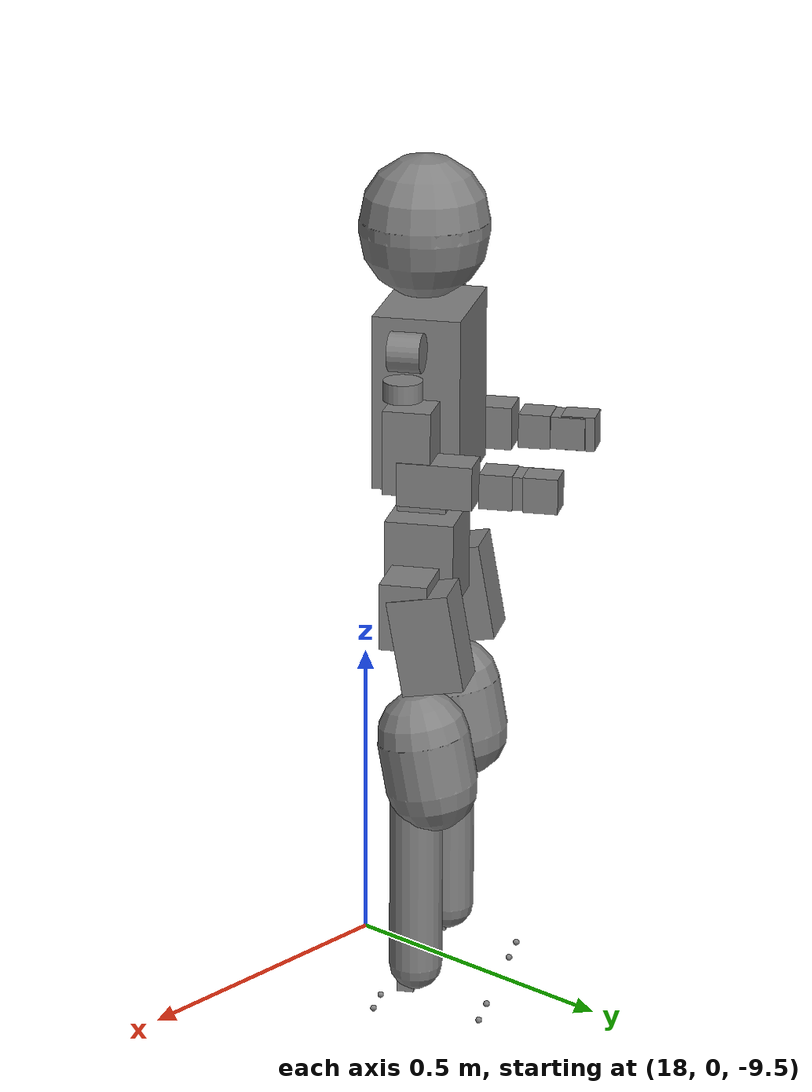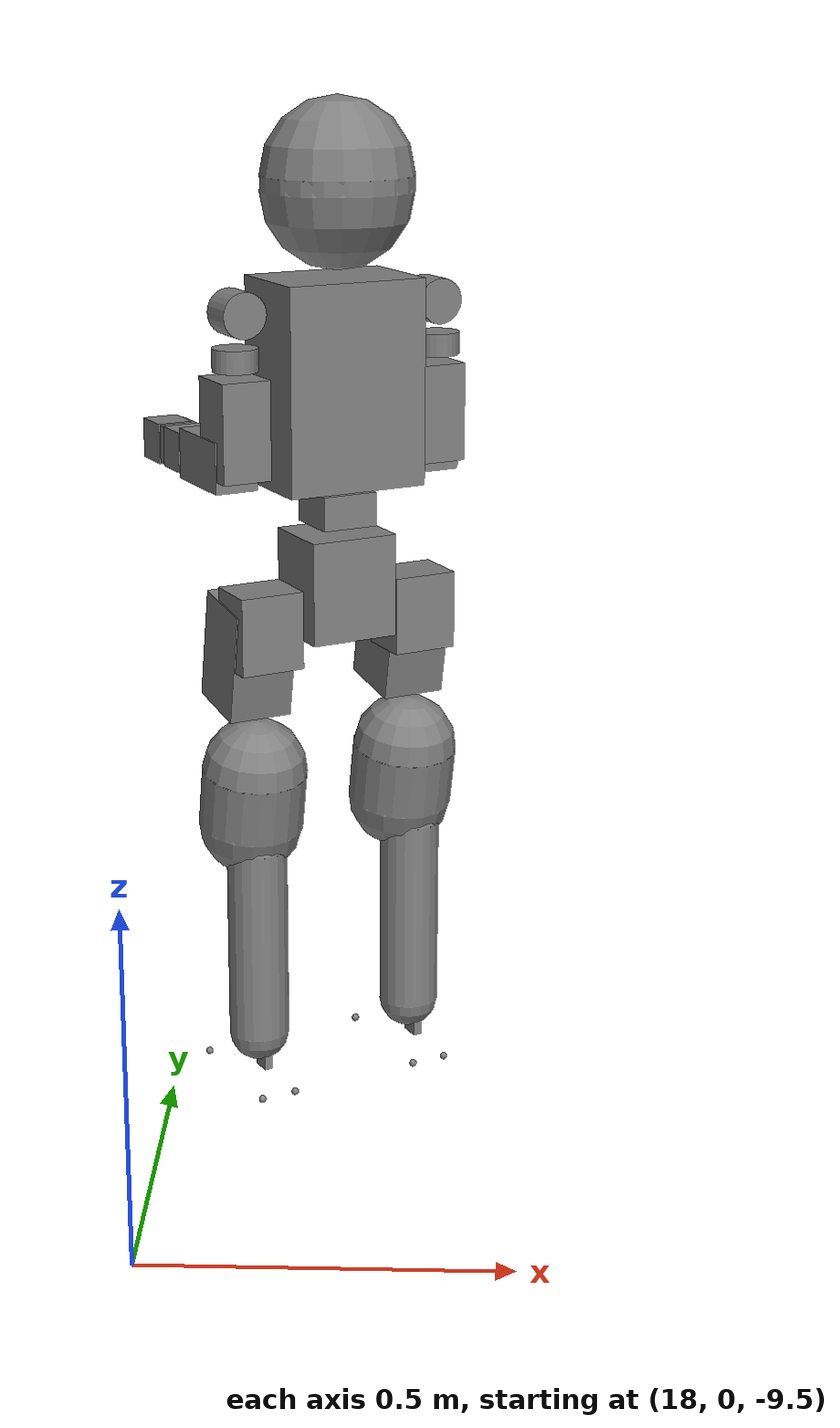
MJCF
<?xml version='1.0' encoding='utf-8'?>
<mujoco model="rek_pelvis_3266">
  <compiler coordinate="local" />
  <option timestep="0.019999992913832199" gravity="0 0 -9.8100004196166992" impratio="1" magnetic="0 0 0" wind="0 0 0" density="0" viscosity="0" o_margin="0" o_solref="0.019999999552965164 1" o_solimp="0.89999997615814209 0.94999998807907104 0.0010000000474974513 0.5 2" integrator="implicitfast" cone="elliptic" jacobian="auto" solver="Newton" iterations="100" tolerance="9.9999999392252903e-09" noslip_iterations="0" noslip_tolerance="9.9999999747524271e-07" ccd_iterations="50" ccd_tolerance="9.9999999747524271e-07">
    <flag constraint="enable" equality="enable" frictionloss="enable" limit="enable" contact="enable" spring="enable" damper="enable" gravity="enable" clampctrl="enable" warmstart="enable" filterparent="enable" actuation="enable" refsafe="enable" override="disable" energy="disable" fwdinv="disable" multiccd="disable" />
  </option>
  <size memory="-1" />
  <custom />
  <worldbody>
    <body name="pelvis_3266" pos="18.254999160766602 0.36000001430511475 -8.5990002155303955" quat="0.50541162160533537 0 0 0.86287837656663136" gravcomp="0">
      <body name="left_hip_pitch_link_3457" pos="-1.3877787807814457e-17 0.064451999962329781 -0.10270000249147415" quat="1 0 0 0" gravcomp="0">
        <body name="left_hip_roll_link_3425" pos="9.7144514654701197e-17 0.052000001072883786 -0.030464999377727509" quat="0.99617868596660997 0 -0.087338568947737019 -1.1102230246251565e-16" gravcomp="0">
          <body name="left_hip_yaw_link_2943" pos="0.025001000612975076 1.5543122344752192e-15 -0.12411999702453594" quat="1 0 0 -1.2576745200831851e-17" gravcomp="0">
            <body name="left_knee_link_3106" pos="-0.078272998332977878 0.0021488999482234955 -0.17734000086784374" quat="0.99617868596660997 6.9388939039072284e-18 0.087338568947737005 -6.1259230688899764e-19" gravcomp="0">
              <body name="left_ankle_pitch_link_3033" pos="1.4934884925987824e-16 -9.4445000285932839e-05 -0.30000999569892883" quat="1 0 0 9.6296497219361793e-35" gravcomp="0">
                <body name="left_ankle_roll_link_3045" pos="-2.9735684393186275e-19 -4.565577275908913e-19 -0.01755799911916256" quat="1 0 0 9.6296497219361793e-35" gravcomp="0">
                  <inertial pos="0.026505000889301987 1.2490009027033011e-15 -0.016425000503659248" quat="-0.00048109179920679656 0.72848180059747192 -0.00061896679591005453 0.68506470616216375" mass="0.60799998044967651" diaginertia="0.00167218002025038 0.0016160999657586217 0.00021762099640909582" />
                  <joint name="joint__left_ankle_roll_joint_2905" type="hinge" pos="0 0 0" axis="1 1.9259299443872359e-34 0" armature="0.0072194500826299191" springref="0" springdamper="0 0" damping="0.05000000074505806" stiffness="0" solreflimit="0.019999999552965164 1" solimplimit="0.89999997615814209 0.94999998807907104 0.0010000000474974513 0.5 2" solreffriction="0.019999999552965164 1" solimpfriction="0.89999997615814209 0.94999998807907104 0.0010000000474974513 0.5 2" frictionloss="0.20000000298023224" limited="true" margin="0" range="-15.000034332275391 15.000034332275391" ref="0" />
                  <geom name="mjgeom_authored_3078" density="0" type="sphere" size="0.004999999888241291" pos="-0.050000000745058351 0.025000000372528544 -0.029999999329447746" quat="1 0 0 9.6296497219361793e-35" priority="0" contype="1" conaffinity="1" group="0" condim="3" solmix="1" solref="0.019999999552965164 1" solimp="0.89999997615814209 0.94999998807907104 0.0010000000474974513" margin="0" gap="0" friction="1 0.004999999888241291 9.9999997473787516e-05" fluidshape="none" fluidcoef="5 0.25 1.5 1 1" />
                  <geom name="mjgeom_authored_3434" density="0" type="sphere" size="0.004999999888241291" pos="-0.050000000745058004 -0.02500000037252894 -0.029999999329447746" quat="1 0 0 9.6296497219361793e-35" priority="0" contype="1" conaffinity="1" group="0" condim="3" solmix="1" solref="0.019999999552965164 1" solimp="0.89999997615814209 0.94999998807907104 0.0010000000474974513" margin="0" gap="0" friction="1 0.004999999888241291 9.9999997473787516e-05" fluidshape="none" fluidcoef="5 0.25 1.5 1 1" />
                  <geom name="mjgeom_authored_3201" density="0" type="sphere" size="0.004999999888241291" pos="0.11999999731779078 0.029999999329447302 -0.02999999932944775" quat="1 0 0 9.6296497219361793e-35" priority="0" contype="1" conaffinity="1" group="0" condim="3" solmix="1" solref="0.019999999552965164 1" solimp="0.89999997615814209 0.94999998807907104 0.0010000000474974513" margin="0" gap="0" friction="1 0.004999999888241291 9.9999997473787516e-05" fluidshape="none" fluidcoef="5 0.25 1.5 1 1" />
                  <geom name="mjgeom_authored_3130" density="0" type="sphere" size="0.004999999888241291" pos="0.11999999731779179 -0.029999999329446275 -0.02999999932944775" quat="1 0 0 9.6296497219361793e-35" priority="0" contype="1" conaffinity="1" group="0" condim="3" solmix="1" solref="0.019999999552965164 1" solimp="0.89999997615814209 0.94999998807907104 0.0010000000474974513" margin="0" gap="0" friction="1 0.004999999888241291 9.9999997473787516e-05" fluidshape="none" fluidcoef="5 0.25 1.5 1 1" />
                </body>
                <inertial pos="-0.0072690001688901209 -6.1582683397176652e-16 0.011137000285089016" quat="0.60305298197600943 0.3692250004128147 0.3692250004128147 0.60305298197600932" mass="0.074000000953674316" diaginertia="1.8900000213761814e-05 1.4080499568080995e-05 6.919499810464913e-06" />
                <joint name="joint__left_ankle_pitch_joint_2982" type="hinge" pos="0 0 0" axis="-2.2204460492503126e-16 1 6.5368229940789346e-33" armature="0.0072194500826299191" springref="0" springdamper="0 0" damping="0.05000000074505806" stiffness="0" solreflimit="0.019999999552965164 1" solimplimit="0.89999997615814209 0.94999998807907104 0.0010000000474974513 0.5 2" solreffriction="0.019999999552965164 1" solimpfriction="0.89999997615814209 0.94999998807907104 0.0010000000474974513 0.5 2" frictionloss="0.20000000298023224" limited="true" margin="0" range="-50.000308990478516 30.000068664550781" ref="0" />
                <geom name="mjgeom_3039" density="0" type="box" size="0.013479510380420836 0.016846910875756297 0.0059266640164423725" pos="-0.0035227723419665718 0.00014300439215739029 -0.0058391094207763672" quat="2.9802318610457207e-08 2.980231861541685e-08 -0.70710678118654691 -0.70710678118654691" priority="0" contype="1" conaffinity="2" group="0" condim="3" solmix="1" solref="0.019999999552965164 1" solimp="0.89999997615814209 0.94999998807907104 0.0010000000474974513" margin="0" gap="0" friction="1 0.004999999888241291 9.9999997473787516e-05" fluidshape="none" fluidcoef="5 0.25 1.5 1 1" />
              </body>
              <inertial pos="0.0054569998756053761 0.0039639999158684758 -0.12073999643325806" quat="0.92341787234595951 -0.032769897917134708 0.015824598274911447 0.38206694297203919" mass="1.9320000410079956" diaginertia="0.011380399577319622 0.011277800425887108 0.0014645799528807402" />
              <joint name="joint__left_knee_joint_3137" type="hinge" pos="0 0 0" axis="-2.2204460492503126e-16 1 6.5368229940789346e-33" armature="0.025101924315094948" springref="0" springdamper="0 0" damping="0.05000000074505806" stiffness="0" solreflimit="0.019999999552965164 1" solimplimit="0.89999997615814209 0.94999998807907104 0.0010000000474974513 0.5 2" solreffriction="0.019999999552965164 1" solimpfriction="0.89999997615814209 0.94999998807907104 0.0010000000474974513 0.5 2" frictionloss="0.20000000298023224" limited="true" margin="0" range="-5.000030517578125 165.00039672851562" ref="0" />
              <geom name="mjgeom_3224" density="0" type="capsule" size="0.041472329758107669 0.13606720604002479" pos="0.011999648064374422 -8.3323335275985524e-05 -0.13741210103034973" quat="4.2146847789581443e-08 1.5407439555097887e-33 7.7037197775489434e-34 -0.99999999999999922" priority="0" contype="1" conaffinity="2" group="0" condim="3" solmix="1" solref="0.019999999552965164 1" solimp="0.89999997615814209 0.94999998807907104 0.0010000000474974513" margin="0" gap="0" friction="1 0.004999999888241291 9.9999997473787516e-05" fluidshape="none" fluidcoef="5 0.25 1.5 1 1" />
            </body>
            <inertial pos="-0.057709001004695545 -0.010981000028549924 -0.15078000724315654" quat="0.60059793208355583 0.15831996789768774 0.22348195109437591 0.75118088985069531" mass="1.7020000219345093" diaginertia="0.0077616600319743156 0.0071757500991225243 0.0016013899585232139" />
            <joint name="joint__left_hip_yaw_joint_3267" type="hinge" pos="0 0 0" axis="-2.2204460492503131e-16 1.3247655120144351e-16 1" armature="0.010177520103752613" springref="0" springdamper="0 0" damping="0.05000000074505806" stiffness="0" solreflimit="0.019999999552965164 1" solimplimit="0.89999997615814209 0.94999998807907104 0.0010000000474974513 0.5 2" solreffriction="0.019999999552965164 1" solimpfriction="0.89999997615814209 0.94999998807907104 0.0010000000474974513 0.5 2" frictionloss="0.20000000298023224" limited="true" margin="0" range="-157.99884033203125 157.99884033203125" ref="0" />
            <geom name="mjgeom_3399" density="0" type="capsule" size="0.071829627268016338 0.041044317185878761" pos="-0.037462260574102665 -0.0010485649108891298 -0.11335682868957533" quat="4.1985788967052733e-08 2.9951634505920302e-09 -6.9388939039072268e-18 -0.99999999999999911" priority="0" contype="1" conaffinity="2" group="0" condim="3" solmix="1" solref="0.019999999552965164 1" solimp="0.89999997615814209 0.94999998807907104 0.0010000000474974513" margin="0" gap="0" friction="1 0.004999999888241291 9.9999997473787516e-05" fluidshape="none" fluidcoef="5 0.25 1.5 1 1" />
          </body>
          <inertial pos="0.029812000691890293 -0.0010450000409044022 -0.087934002280235485" quat="0.97780777106336325 -1.9711895438305482e-05 0.20557596017013183 -0.040379289984682841" mass="1.5199999809265137" diaginertia="0.0025498599279671907 0.0024116900749504566 0.0014875499764457345" />
          <joint name="joint__left_hip_roll_joint_3248" type="hinge" pos="0 0 0" axis="1 -2.5153490401663703e-17 0" armature="0.025101924315094948" springref="0" springdamper="0 0" damping="0.05000000074505806" stiffness="0" solreflimit="0.019999999552965164 1" solimplimit="0.89999997615814209 0.94999998807907104 0.0010000000474974513 0.5 2" solreffriction="0.019999999552965164 1" solimpfriction="0.89999997615814209 0.94999998807907104 0.0010000000474974513 0.5 2" frictionloss="0.20000000298023224" limited="true" margin="0" range="-30.000068664550781 170.00230407714844" ref="0" />
          <geom name="mjgeom_3141" density="0" type="box" size="0.047961223754100502 0.076655694283545031 0.044093289761804037" pos="0.026883890852332802 -0.0001681223511682331 -0.038719426840544219" quat="2.7570534225432319e-08 3.1806334954698201e-08 -0.70710678118654702 -0.70710678118654691" priority="0" contype="1" conaffinity="2" group="0" condim="3" solmix="1" solref="0.019999999552965164 1" solimp="0.89999997615814209 0.94999998807907104 0.0010000000474974513" margin="0" gap="0" friction="1 0.004999999888241291 9.9999997473787516e-05" fluidshape="none" fluidcoef="5 0.25 1.5 1 1" />
        </body>
        <inertial pos="0.0027409999165692034 0.04779100045561932 -0.026060000061988831" quat="0.95486247817542302 0.29396413007377181 0.030255613910682867 0.030122015695304819" mass="1.3500000238418579" diaginertia="0.0018151700496673584 0.0015342199476435781 0.0011621200246736407" />
        <joint name="joint__left_hip_pitch_joint_3047" type="hinge" pos="0 0 0" axis="-2.2204460492503126e-16 1 0" armature="0.010177520103752613" springref="0" springdamper="0 0" damping="0.05000000074505806" stiffness="0" solreflimit="0.019999999552965164 1" solimplimit="0.89999997615814209 0.94999998807907104 0.0010000000474974513 0.5 2" solreffriction="0.019999999552965164 1" solimpfriction="0.89999997615814209 0.94999998807907104 0.0010000000474974513 0.5 2" frictionloss="0.20000000298023224" limited="true" margin="0" range="-144.99842834472656 165.00039672851562" ref="0" />
        <geom name="mjgeom_3337" density="0" type="box" size="0.037135550519451506 0.05274748546071352 0.044440440251491964" pos="-0.001050249789842167 0.04937807470559951 -0.021436683833599091" quat="3.0908621106995326e-08 3.0908621106995326e-08 -0.70710678118654691 -0.70710678118654691" priority="0" contype="1" conaffinity="2" group="0" condim="3" solmix="1" solref="0.019999999552965164 1" solimp="0.89999997615814209 0.94999998807907104 0.0010000000474974513" margin="0" gap="0" friction="1 0.004999999888241291 9.9999997473787516e-05" fluidshape="none" fluidcoef="5 0.25 1.5 1 1" />
      </body>
      <body name="right_hip_pitch_link_3469" pos="1.3877787807814457e-17 -0.064451999962329781 -0.10270000249147415" quat="1 0 0 0" gravcomp="0">
        <body name="right_hip_roll_link_3345" pos="-9.7144514654701197e-17 -0.052000001072883786 -0.030464999377727509" quat="0.99617868596660997 0 -0.087338568947737019 -1.1102230246251565e-16" gravcomp="0">
          <body name="right_hip_yaw_link_3191" pos="0.025001000612975076 1.5543122344752192e-15 -0.12411999702453594" quat="1 0 0 -1.2576745200831851e-17" gravcomp="0">
            <body name="right_knee_link_3429" pos="-0.078272998332977572 -0.0021488999482247723 -0.17734000086784379" quat="0.99617868596660997 6.9388939039072284e-18 0.087338568947737005 -6.1259230688899764e-19" gravcomp="0">
              <body name="right_ankle_pitch_link_3173" pos="-1.5951324462692984e-16 9.444500028591724e-05 -0.30000999569892883" quat="1 0 0 9.6296497219361793e-35" gravcomp="0">
                <body name="right_ankle_roll_link_3090" pos="-2.9735684393186275e-19 -4.565577275908913e-19 -0.01755799911916256" quat="1 0 0 9.6296497219361793e-35" gravcomp="0">
                  <inertial pos="0.026505000889301987 1.2490009027033011e-15 -0.016425000503659248" quat="0.00048109179920674972 0.72848180059747181 0.00061896679591011828 0.68506470616216364" mass="0.60799998044967651" diaginertia="0.00167218002025038 0.0016160999657586217 0.00021762099640909582" />
                  <joint name="joint__right_ankle_roll_joint_3474" type="hinge" pos="0 0 0" axis="1 1.9259299443872359e-34 0" armature="0.0072194500826299191" springref="0" springdamper="0 0" damping="0.05000000074505806" stiffness="0" solreflimit="0.019999999552965164 1" solimplimit="0.89999997615814209 0.94999998807907104 0.0010000000474974513 0.5 2" solreffriction="0.019999999552965164 1" solimpfriction="0.89999997615814209 0.94999998807907104 0.0010000000474974513 0.5 2" frictionloss="0.20000000298023224" limited="true" margin="0" range="-15.000034332275391 15.000034332275391" ref="0" />
                  <geom name="mjgeom_authored_3138" density="0" type="sphere" size="0.004999999888241291" pos="-0.050000000745058351 0.025000000372528544 -0.029999999329447746" quat="1 0 0 9.6296497219361793e-35" priority="0" contype="1" conaffinity="1" group="0" condim="3" solmix="1" solref="0.019999999552965164 1" solimp="0.89999997615814209 0.94999998807907104 0.0010000000474974513" margin="0" gap="0" friction="1 0.004999999888241291 9.9999997473787516e-05" fluidshape="none" fluidcoef="5 0.25 1.5 1 1" />
                  <geom name="mjgeom_authored_3263" density="0" type="sphere" size="0.004999999888241291" pos="-0.050000000745058004 -0.02500000037252894 -0.029999999329447746" quat="1 0 0 9.6296497219361793e-35" priority="0" contype="1" conaffinity="1" group="0" condim="3" solmix="1" solref="0.019999999552965164 1" solimp="0.89999997615814209 0.94999998807907104 0.0010000000474974513" margin="0" gap="0" friction="1 0.004999999888241291 9.9999997473787516e-05" fluidshape="none" fluidcoef="5 0.25 1.5 1 1" />
                  <geom name="mjgeom_authored_3316" density="0" type="sphere" size="0.004999999888241291" pos="0.11999999731779072 0.029999999329447358 -0.02999999932944775" quat="1 0 0 9.6296497219361793e-35" priority="0" contype="1" conaffinity="1" group="0" condim="3" solmix="1" solref="0.019999999552965164 1" solimp="0.89999997615814209 0.94999998807907104 0.0010000000474974513" margin="0" gap="0" friction="1 0.004999999888241291 9.9999997473787516e-05" fluidshape="none" fluidcoef="5 0.25 1.5 1 1" />
                  <geom name="mjgeom_authored_3217" density="0" type="sphere" size="0.004999999888241291" pos="0.11999999731779183 -0.029999999329446303 -0.02999999932944775" quat="1 0 0 9.6296497219361793e-35" priority="0" contype="1" conaffinity="1" group="0" condim="3" solmix="1" solref="0.019999999552965164 1" solimp="0.89999997615814209 0.94999998807907104 0.0010000000474974513" margin="0" gap="0" friction="1 0.004999999888241291 9.9999997473787516e-05" fluidshape="none" fluidcoef="5 0.25 1.5 1 1" />
                </body>
                <inertial pos="-0.0072690001688901209 -6.1582683397176652e-16 0.011137000285089016" quat="0.60305298197600943 0.3692250004128147 0.3692250004128147 0.60305298197600932" mass="0.074000000953674316" diaginertia="1.8900000213761814e-05 1.4080499568080995e-05 6.919499810464913e-06" />
                <joint name="joint__right_ankle_pitch_joint_3312" type="hinge" pos="0 0 0" axis="-2.2204460492503126e-16 1 6.5368229940789346e-33" armature="0.0072194500826299191" springref="0" springdamper="0 0" damping="0.05000000074505806" stiffness="0" solreflimit="0.019999999552965164 1" solimplimit="0.89999997615814209 0.94999998807907104 0.0010000000474974513 0.5 2" solreffriction="0.019999999552965164 1" solimpfriction="0.89999997615814209 0.94999998807907104 0.0010000000474974513 0.5 2" frictionloss="0.20000000298023224" limited="true" margin="0" range="-50.000308990478516 30.000068664550781" ref="0" />
                <geom name="mjgeom_3271" density="0" type="box" size="0.013479510380420836 0.016846909420564774 0.005926662197452969" pos="-0.0035228133201594962 -0.00014299694157599973 -0.0058391094207763672" quat="2.9802318610457207e-08 2.980231861541685e-08 -0.70710678118654691 -0.70710678118654691" priority="0" contype="1" conaffinity="2" group="0" condim="3" solmix="1" solref="0.019999999552965164 1" solimp="0.89999997615814209 0.94999998807907104 0.0010000000474974513" margin="0" gap="0" friction="1 0.004999999888241291 9.9999997473787516e-05" fluidshape="none" fluidcoef="5 0.25 1.5 1 1" />
              </body>
              <inertial pos="0.0054569998756047039 -0.003963999915868782 -0.12073999643325806" quat="0.92343889150208058 0.034527595519145943 0.011633299100056282 -0.38201194374145381" mass="1.9320000410079956" diaginertia="0.011374000459909439 0.011284300126135349 0.0014645199989899993" />
              <joint name="joint__right_knee_joint_3412" type="hinge" pos="0 0 0" axis="-2.2204460492503126e-16 1 6.5368229940789346e-33" armature="0.025101924315094948" springref="0" springdamper="0 0" damping="0.05000000074505806" stiffness="0" solreflimit="0.019999999552965164 1" solimplimit="0.89999997615814209 0.94999998807907104 0.0010000000474974513 0.5 2" solreffriction="0.019999999552965164 1" solimpfriction="0.89999997615814209 0.94999998807907104 0.0010000000474974513 0.5 2" frictionloss="0.20000000298023224" limited="true" margin="0" range="-5.000030517578125 165.00039672851562" ref="0" />
              <geom name="mjgeom_3023" density="0" type="capsule" size="0.041472326847724623 0.1360671943984926" pos="0.011999662965535526 8.3368038757580809e-05 -0.13741210103034973" quat="4.2146847789581443e-08 1.5407439555097887e-33 7.7037197775489434e-34 -0.99999999999999922" priority="0" contype="1" conaffinity="2" group="0" condim="3" solmix="1" solref="0.019999999552965164 1" solimp="0.89999997615814209 0.94999998807907104 0.0010000000474974513" margin="0" gap="0" friction="1 0.004999999888241291 9.9999997473787516e-05" fluidshape="none" fluidcoef="5 0.25 1.5 1 1" />
            </body>
            <inertial pos="-0.057709001004695989 0.010981000028550493 -0.15078000724315646" quat="0.7511808898506952 0.22348195109437591 0.15831996789768774 0.60059793208355594" mass="1.7020000219345093" diaginertia="0.0077616600319743156 0.0071757500991225243 0.0016013899585232139" />
            <joint name="joint__right_hip_yaw_joint_3071" type="hinge" pos="0 0 0" axis="-2.2204460492503131e-16 1.3247655120144351e-16 1" armature="0.010177520103752613" springref="0" springdamper="0 0" damping="0.05000000074505806" stiffness="0" solreflimit="0.019999999552965164 1" solimplimit="0.89999997615814209 0.94999998807907104 0.0010000000474974513 0.5 2" solreffriction="0.019999999552965164 1" solimpfriction="0.89999997615814209 0.94999998807907104 0.0010000000474974513 0.5 2" frictionloss="0.20000000298023224" limited="true" margin="0" range="-157.99884033203125 157.99884033203125" ref="0" />
            <geom name="mjgeom_3406" density="0" type="capsule" size="0.071829644730314612 0.041044323006644852" pos="-0.037462309002875629 0.0010465979576122011 -0.11335794627666473" quat="4.1985788967052733e-08 2.9951634505920302e-09 -6.9388939039072268e-18 -0.99999999999999911" priority="0" contype="1" conaffinity="2" group="0" condim="3" solmix="1" solref="0.019999999552965164 1" solimp="0.89999997615814209 0.94999998807907104 0.0010000000474974513" margin="0" gap="0" friction="1 0.004999999888241291 9.9999997473787516e-05" fluidshape="none" fluidcoef="5 0.25 1.5 1 1" />
          </body>
          <inertial pos="0.029812000691889974 0.0010450000409024038 -0.087934002280235443" quat="0.97780777106336314 1.9711895438333234e-05 0.20557596017013174 0.04037928998468273" mass="1.5199999809265137" diaginertia="0.0025498599279671907 0.0024116900749504566 0.0014875499764457345" />
          <joint name="joint__right_hip_roll_joint_3059" type="hinge" pos="0 0 0" axis="1 -2.5153490401663703e-17 0" armature="0.025101924315094948" springref="0" springdamper="0 0" damping="0.05000000074505806" stiffness="0" solreflimit="0.019999999552965164 1" solimplimit="0.89999997615814209 0.94999998807907104 0.0010000000474974513 0.5 2" solreffriction="0.019999999552965164 1" solimpfriction="0.89999997615814209 0.94999998807907104 0.0010000000474974513 0.5 2" frictionloss="0.20000000298023224" limited="true" margin="0" range="-170.00230407714844 30.000068664550781" ref="0" />
          <geom name="mjgeom_3062" density="0" type="box" size="0.04796121793333441 0.076655682642012848 0.044093283941037946" pos="0.026883879676461598 0.00016814470291211248 -0.038719426840544163" quat="2.7570534225432319e-08 3.1806334954698201e-08 -0.70710678118654702 -0.70710678118654691" priority="0" contype="1" conaffinity="2" group="0" condim="3" solmix="1" solref="0.019999999552965164 1" solimp="0.89999997615814209 0.94999998807907104 0.0010000000474974513" margin="0" gap="0" friction="1 0.004999999888241291 9.9999997473787516e-05" fluidshape="none" fluidcoef="5 0.25 1.5 1 1" />
        </body>
        <inertial pos="0.0027409999165676213 -0.047791000455619327 -0.026060000061988831" quat="0.95486247817542302 -0.29396413007377176 0.030255613910682905 -0.03012201569530476" mass="1.3500000238418579" diaginertia="0.0018151700496673584 0.0015342199476435781 0.0011621200246736407" />
        <joint name="joint__right_hip_pitch_joint_3298" type="hinge" pos="0 0 0" axis="-2.2204460492503126e-16 1 0" armature="0.010177520103752613" springref="0" springdamper="0 0" damping="0.05000000074505806" stiffness="0" solreflimit="0.019999999552965164 1" solimplimit="0.89999997615814209 0.94999998807907104 0.0010000000474974513 0.5 2" solreffriction="0.019999999552965164 1" solimpfriction="0.89999997615814209 0.94999998807907104 0.0010000000474974513 0.5 2" frictionloss="0.20000000298023224" limited="true" margin="0" range="-144.99842834472656 165.00039672851562" ref="0" />
        <geom name="mjgeom_3024" density="0" type="box" size="0.037135550519451506 0.05274748546071352 0.044440440251491964" pos="-0.0010502411751079771 -0.049378067255020773 -0.021436624228954315" quat="3.0908621106995326e-08 3.0908621106995326e-08 -0.70710678118654691 -0.70710678118654691" priority="0" contype="1" conaffinity="2" group="0" condim="3" solmix="1" solref="0.019999999552965164 1" solimp="0.89999997615814209 0.94999998807907104 0.0010000000474974513" margin="0" gap="0" friction="1 0.004999999888241291 9.9999997473787516e-05" fluidshape="none" fluidcoef="5 0.25 1.5 1 1" />
      </body>
      <body name="waist_yaw_link_3359" pos="0 0 0" quat="1 0 0 0" gravcomp="0">
        <body name="waist_roll_link_2894" pos="-0.0039634997956447936 1.2281842209915794e-15 0.035000000149011612" quat="1 0 0 0" gravcomp="0">
          <body name="torso_link_3347" pos="0 0 0.018999999389052391" quat="1 0 0 0" gravcomp="0">
            <body name="left_shoulder_pitch_link_3161" pos="0.00395630020648155 0.10022000223398055 0.23778000473976135" quat="0.9902641388950898 0.1392010247334452 1.3872202005688061e-05 -9.8686814262172184e-05" gravcomp="0">
              <body name="left_shoulder_roll_link_3360" pos="-4.5796699765787707e-16 0.037999998778103894 -0.0138309998437765" quat="0.99026821913005192 -0.13917203088622282 0 6.3533823791176933e-18" gravcomp="0">
                <body name="left_shoulder_yaw_link_3168" pos="5.8460181140418399e-16 0.0062400000169883594 -0.10320000350475353" quat="1 0 0 -3.2819588146978036e-18" gravcomp="0">
                  <body name="left_elbow_link_3284" pos="0.015783000737429023 6.1756155744774333e-16 -0.0805179998278613" quat="1 0 0 -3.2819588146978036e-18" gravcomp="0">
                    <body name="left_wrist_roll_link_3032" pos="0.10000000149011658 0.0018879099516206088 -0.0099999997764823843" quat="1 0 0 -3.2819588146978036e-18" gravcomp="0">
                      <body name="left_wrist_pitch_link_2914" pos="0.037999998778104768 -1.3877787807814457e-17 1.3392692038921919e-16" quat="1 0 0 -3.2819588146978036e-18" gravcomp="0">
                        <body name="left_wrist_yaw_link_3467" pos="0.046000000089407536 9.7144514654701197e-16 -3.156917205405195e-16" quat="1 0 0 -3.2819588146978036e-18" gravcomp="0">
                          <inertial pos="0.070824399590491569 0.00019174499902747943 0.0016174199990922002" quat="0.51057085673791158 0.52629485922096653 0.46807784345838327 0.49318784846227443" mass="0.25457599759101868" diaginertia="0.00064611301058903337 0.00055999297183007002 0.00014756599557586014" />
                          <joint name="joint__left_wrist_yaw_joint_3398" type="hinge" pos="0 0 0" axis="-4.4408920985006252e-16 -6.0488425288159066e-17 1" armature="0.0042500002309679985" springref="0" springdamper="0 0" damping="0.05000000074505806" stiffness="0" solreflimit="0.019999999552965164 1" solimplimit="0.89999997615814209 0.94999998807907104 0.0010000000474974513 0.5 2" solreffriction="0.019999999552965164 1" solimpfriction="0.89999997615814209 0.94999998807907104 0.0010000000474974513 0.5 2" frictionloss="0.10000000149011612" limited="true" margin="0" range="-0.0099999997764825821 0.0099999997764825821" ref="0" />
                          <geom name="mjgeom_3001" density="0" type="box" size="0.02654675918165595 0.027197948656976226 0.024242402287200097" pos="0.011494085192680591 0.0030774502083663752 -0.0002476256340736681" quat="3.0904894321660931e-08 3.0899774882994809e-08 -0.70710678118654691 -0.70710678118654691" priority="0" contype="1" conaffinity="2" group="0" condim="3" solmix="1" solref="0.019999999552965164 1" solimp="0.89999997615814209 0.94999998807907104 0.0010000000474974513" margin="0" gap="0" friction="1 0.004999999888241291 9.9999997473787516e-05" fluidshape="none" fluidcoef="5 0.25 1.5 1 1" />
                        </body>
                        <inertial pos="0.022999899461865689 -0.0011168499477202942 -0.0011165799805891311" quat="0.24999781281163241 0.66136261727293699 0.2930358512109591 0.64360746730313778" mass="0.48405000567436218" diaginertia="0.00043035298585891724 0.00042987300548702478 0.00016464799409732223" />
                        <joint name="joint__left_wrist_pitch_joint_3007" type="hinge" pos="0 0 0" axis="2.2204460492503131e-16 1 4.7915419271355436e-21" armature="0.0042500002309679985" springref="0" springdamper="0 0" damping="0.05000000074505806" stiffness="0" solreflimit="0.019999999552965164 1" solimplimit="0.89999997615814209 0.94999998807907104 0.0010000000474974513 0.5 2" solreffriction="0.019999999552965164 1" solimpfriction="0.89999997615814209 0.94999998807907104 0.0010000000474974513 0.5 2" frictionloss="0.10000000149011612" limited="true" margin="0" range="-0.0099999997764825821 0.0099999997764825821" ref="0" />
                        <geom name="mjgeom_3334" density="0" type="box" size="0.046348539763130261 0.025670017930679027 0.025670265313237909" pos="0.023001398891209703 -1.2152595460987459e-06 -8.3260238253851098e-07" quat="3.0904894321660931e-08 3.0899774882994809e-08 -0.70710678118654691 -0.70710678118654691" priority="0" contype="1" conaffinity="2" group="0" condim="3" solmix="1" solref="0.019999999552965164 1" solimp="0.89999997615814209 0.94999998807907104 0.0010000000474974513" margin="0" gap="0" friction="1 0.004999999888241291 9.9999997473787516e-05" fluidshape="none" fluidcoef="5 0.25 1.5 1 1" />
                      </body>
                      <inertial pos="0.017139399424195696 0.00053759099682867267 4.8864001193679435e-07" quat="0.57533836956330275 0.41166726178029356 -0.57490635509352861 0.41109428232417616" mass="0.085445001721382141" diaginertia="5.4821099183754995e-05 4.9664598918752745e-05 3.5779801692115143e-05" />
                      <joint name="joint__left_wrist_roll_joint_3260" type="hinge" pos="0 0 0" axis="1 -6.5639176293956072e-18 0" armature="0.0036097250413149595" springref="0" springdamper="0 0" damping="0.05000000074505806" stiffness="0" solreflimit="0.019999999552965164 1" solimplimit="0.89999997615814209 0.94999998807907104 0.0010000000474974513 0.5 2" solreffriction="0.019999999552965164 1" solimpfriction="0.89999997615814209 0.94999998807907104 0.0010000000474974513 0.5 2" frictionloss="0.10000000149011612" limited="true" margin="0" range="-0.0099999997764825821 0.0099999997764825821" ref="0" />
                      <geom name="mjgeom_3002" density="0" type="box" size="0.025194766931235797 0.026991910999640826 0.027219200273975733" pos="0.027983762323856215 -0.00023716397117844179 -9.6689909696807475e-06" quat="3.0904894321660931e-08 3.0899774882994809e-08 -0.70710678118654691 -0.70710678118654691" priority="0" contype="1" conaffinity="2" group="0" condim="3" solmix="1" solref="0.019999999552965164 1" solimp="0.89999997615814209 0.94999998807907104 0.0010000000474974513" margin="0" gap="0" friction="1 0.004999999888241291 9.9999997473787516e-05" fluidshape="none" fluidcoef="5 0.25 1.5 1 1" />
                    </body>
                    <inertial pos="0.064956001937389818 0.0044539999216803017 -0.010061999782919138" quat="0.54176520789614191 0.63613229389227743 0.38882118096304707 0.38812917104374023" mass="0.60000002384185791" diaginertia="0.0004430350090842694 0.00042161199962720275 0.00025935299345292151" />
                    <joint name="joint__left_elbow_joint_3144" type="hinge" pos="0 0 0" axis="2.2204460492503131e-16 1 4.7915419271355436e-21" armature="0.0036097250413149595" springref="0" springdamper="0 0" damping="0.05000000074505806" stiffness="0" solreflimit="0.019999999552965164 1" solimplimit="0.89999997615814209 0.94999998807907104 0.0010000000474974513 0.5 2" solreffriction="0.019999999552965164 1" solimpfriction="0.89999997615814209 0.94999998807907104 0.0010000000474974513 0.5 2" frictionloss="0.20000000298023224" limited="true" margin="0" range="-60.000137329101562 120.00027465820312" ref="0" />
                    <geom name="mjgeom_2925" density="0" type="box" size="0.05791535368189217 0.033814596827141948 0.029707717476412657" pos="0.034565247595310447 0.0017413077875976235 -0.0078394636511802309" quat="3.0904894321660931e-08 3.0899774882994809e-08 -0.70710678118654691 -0.70710678118654691" priority="0" contype="1" conaffinity="2" group="0" condim="3" solmix="1" solref="0.019999999552965164 1" solimp="0.89999997615814209 0.94999998807907104 0.0010000000474974513" margin="0" gap="0" friction="1 0.004999999888241291 9.9999997473787516e-05" fluidshape="none" fluidcoef="5 0.25 1.5 1 1" />
                  </body>
                  <inertial pos="0.010773000307380974 -0.0029490001033994455 -0.072008997201920208" quat="0.71687871348059373 -0.096482835314005699 -0.06799415691056454 0.68713373318023108" mass="0.73400002717971802" diaginertia="0.0010618700180202723 0.0010321700247004628 0.0004006609960924834" />
                  <joint name="joint__left_shoulder_yaw_joint_2923" type="hinge" pos="0 0 0" axis="-4.4408920985006252e-16 -6.0488425288159066e-17 1" armature="0.0036097250413149595" springref="0" springdamper="0 0" damping="0.05000000074505806" stiffness="0" solreflimit="0.019999999552965164 1" solimplimit="0.89999997615814209 0.94999998807907104 0.0010000000474974513 0.5 2" solreffriction="0.019999999552965164 1" solimpfriction="0.89999997615814209 0.94999998807907104 0.0010000000474974513 0.5 2" frictionloss="0.20000000298023224" limited="true" margin="0" range="-150.00035095214844 150.00035095214844" ref="0" />
                  <geom name="mjgeom_2988" density="0" type="box" size="0.036520726280286915 0.065385946072638049 0.033536946284584708" pos="0.0077661490067839865 -0.0041541093960404517 -0.041064620018004976" quat="3.0904894321660931e-08 3.0899774882994809e-08 -0.70710678118654691 -0.70710678118654691" priority="0" contype="1" conaffinity="2" group="0" condim="3" solmix="1" solref="0.019999999552965164 1" solimp="0.89999997615814209 0.94999998807907104 0.0010000000474974513" margin="0" gap="0" friction="1 0.004999999888241291 9.9999997473787516e-05" fluidshape="none" fluidcoef="5 0.25 1.5 1 1" />
                </body>
                <inertial pos="-0.00022699999681280968 0.0072699999436722645 -0.063243001699447396" quat="0.70125602097011697 -0.019622301241046993 -0.0071031701083145108 0.71260402982412119" mass="0.64300000667572021" diaginertia="0.00069131102645769715 0.00061801099218428135 0.00038897700142115355" />
                <joint name="joint__left_shoulder_roll_joint_3184" type="hinge" pos="0 0 0" axis="1 -6.5639176293956072e-18 0" armature="0.0036097250413149595" springref="0" springdamper="0 0" damping="0.05000000074505806" stiffness="0" solreflimit="0.019999999552965164 1" solimplimit="0.89999997615814209 0.94999998807907104 0.0010000000474974513 0.5 2" solreffriction="0.019999999552965164 1" solimpfriction="0.89999997615814209 0.94999998807907104 0.0010000000474974513 0.5 2" frictionloss="0.20000000298023224" limited="true" margin="0" range="-90.997154235839844 129.00144958496094" ref="0" />
                <geom name="mjgeom_authored_2987" density="0" type="cylinder" size="0.029999999329447743 0.014999999664723871" pos="-0.0040000001899895728 0.0060000000521544371 -0.052999999374152" quat="1 0 0 -3.2819588146978036e-18" priority="0" contype="1" conaffinity="1" group="0" condim="3" solmix="1" solref="0.019999999552965164 1" solimp="0.89999997615814209 0.94999998807907104 0.0010000000474974513" margin="0" gap="0" friction="1 0.004999999888241291 9.9999997473787516e-05" fluidshape="none" fluidcoef="5 0.25 1.5 1 1" />
              </body>
              <inertial pos="-2.5673907444456745e-16 0.035891998559235957 -0.011628000065684804" quat="0.6541518924397296 0.013045797575914023 -0.32626696220841073 0.6822499381857241" mass="0.71799999475479126" diaginertia="0.00046586399548687041 0.00043284200364723802 0.00040639401413500309" />
              <joint name="joint__left_shoulder_pitch_joint_3340" type="hinge" pos="0 0 0" axis="-2.2204460492503126e-16 1 -1.9626155733547183e-17" armature="0.0036097250413149595" springref="0" springdamper="0 0" damping="0.05000000074505806" stiffness="0" solreflimit="0.019999999552965164 1" solimplimit="0.89999997615814209 0.94999998807907104 0.0010000000474974513 0.5 2" solreffriction="0.019999999552965164 1" solimpfriction="0.89999997615814209 0.94999998807907104 0.0010000000474974513 0.5 2" frictionloss="0.20000000298023224" limited="true" margin="0" range="-176.99812316894531 153.00263977050781" ref="0" />
              <geom name="mjgeom_authored_2910" density="0" type="cylinder" size="0.029999999329447736 0.025000000372529023" pos="7.9797279894933126e-16 0.03999999910593155 -0.0099999997764835744" quat="0.70710678118654757 -2.7755575615628914e-17 0.70710678118654757 -6.9388939039072284e-17" priority="0" contype="1" conaffinity="1" group="0" condim="3" solmix="1" solref="0.019999999552965164 1" solimp="0.89999997615814209 0.94999998807907104 0.0010000000474974513" margin="0" gap="0" friction="1 0.004999999888241291 9.9999997473787516e-05" fluidshape="none" fluidcoef="5 0.25 1.5 1 1" />
            </body>
            <body name="right_shoulder_pitch_link_3391" pos="0.0039563002064828823 -0.10021000355482021 0.23778000473976135" quat="0.99026413889508969 -0.13920102473344517 1.3872202005701936e-05 9.8686814262061135e-05" gravcomp="0">
              <body name="right_shoulder_roll_link_3426" pos="-4.0245584642661925e-16 -0.037999998778105282 -0.013830999843776896" quat="0.99026821913005181 0.13917203088622282 0 6.3668925546263981e-17" gravcomp="0">
                <body name="right_shoulder_yaw_link_3107" pos="2.1857515797307769e-16 -0.0062400000169868805 -0.10320000350475353" quat="1 0 -3.3881317890171999e-21 -1.7084806385460423e-17" gravcomp="0">
                  <body name="right_elbow_link_3322" pos="0.015783000737428672 -2.0816681711721685e-17 -0.0805179998278613" quat="1 0 -3.3881317890171999e-21 -1.7084806385460423e-17" gravcomp="0">
                    <body name="right_wrist_roll_link_3331" pos="0.10000000149011669 -0.0018879099516189157 -0.0099999997764823843" quat="1 0 -3.3881317890171999e-21 -1.7084806385460423e-17" gravcomp="0">
                      <body name="right_wrist_pitch_link_3282" pos="0.03799999877810422 -1.1032841307212493e-15 1.3383131154529786e-16" quat="1 0 -3.3881317890171999e-21 -1.7084806385460423e-17" gravcomp="0">
                        <body name="right_wrist_yaw_link_3293" pos="0.046000000089407668 1.214306433183765e-15 -3.1555619526895881e-16" quat="1 0 -3.3881317890171999e-21 -1.7084806385460423e-17" gravcomp="0">
                          <inertial pos="0.070824399590492124 -0.00019174499902901987 0.0016174199990922" quat="0.49318784846227448 0.46807784345838332 0.52629485922096642 0.51057085673791147" mass="0.25457599759101868" diaginertia="0.00064611301058903337 0.00055999297183007002 0.00014756599557586014" />
                          <joint name="joint__right_wrist_yaw_joint_3226" type="hinge" pos="0 0 0" axis="2.2204460492503131e-16 7.9696518988563695e-17 1" armature="0.0042500002309679985" springref="0" springdamper="0 0" damping="0.05000000074505806" stiffness="0" solreflimit="0.019999999552965164 1" solimplimit="0.89999997615814209 0.94999998807907104 0.0010000000474974513 0.5 2" solreffriction="0.019999999552965164 1" solimpfriction="0.89999997615814209 0.94999998807907104 0.0010000000474974513 0.5 2" frictionloss="0.10000000149011612" limited="true" margin="0" range="-0.0099999997764825821 0.0099999997764825821" ref="0" />
                          <geom name="mjgeom_2927" density="0" type="box" size="0.026546759181655947 0.027197948656976226 0.024242396466434005" pos="0.011504098773001998 -0.0030774651095282421 -0.00024767033755791464" quat="3.0914948527974693e-08 3.0909807745011731e-08 -0.70710678118654691 -0.70710678118654691" priority="0" contype="1" conaffinity="2" group="0" condim="3" solmix="1" solref="0.019999999552965164 1" solimp="0.89999997615814209 0.94999998807907104 0.0010000000474974513" margin="0" gap="0" friction="1 0.004999999888241291 9.9999997473787516e-05" fluidshape="none" fluidcoef="5 0.25 1.5 1 1" />
                        </body>
                        <inertial pos="0.022999899461865588 0.0011168499477210089 -0.0011165799805891309" quat="0.64360746730313789 0.29303585121095915 0.66136261727293688 0.24999781281163239" mass="0.48405000567436218" diaginertia="0.00043035298585891724 0.00042987300548702478 0.00016464799409732223" />
                        <joint name="joint__right_wrist_pitch_joint_3437" type="hinge" pos="0 0 0" axis="-2.2204460492503126e-16 1 1.1978854817838857e-21" armature="0.0042500002309679985" springref="0" springdamper="0 0" damping="0.05000000074505806" stiffness="0" solreflimit="0.019999999552965164 1" solimplimit="0.89999997615814209 0.94999998807907104 0.0010000000474974513 0.5 2" solreffriction="0.019999999552965164 1" solimpfriction="0.89999997615814209 0.94999998807907104 0.0010000000474974513 0.5 2" frictionloss="0.10000000149011612" limited="true" margin="0" range="-0.0099999997764825821 0.0099999997764825821" ref="0" />
                        <geom name="mjgeom_2926" density="0" type="box" size="0.046348571777343757 0.025670015020295981 0.025670265313237909" pos="0.023011352866888077 1.1221272870967636e-06 -8.3260238217188569e-07" quat="3.0914948527974693e-08 3.0909807745011731e-08 -0.70710678118654691 -0.70710678118654691" priority="0" contype="1" conaffinity="2" group="0" condim="3" solmix="1" solref="0.019999999552965164 1" solimp="0.89999997615814209 0.94999998807907104 0.0010000000474974513" margin="0" gap="0" friction="1 0.004999999888241291 9.9999997473787516e-05" fluidshape="none" fluidcoef="5 0.25 1.5 1 1" />
                      </body>
                      <inertial pos="0.017139399424195741 -0.00053759099682714612 4.8864001193688033e-07" quat="0.41166726178029339 0.57533836956330286 -0.41109428232417611 0.5749063550935285" mass="0.085445001721382141" diaginertia="5.4821099183754995e-05 4.9664598918752745e-05 3.5779801692115143e-05" />
                      <joint name="joint__right_wrist_roll_joint_3378" type="hinge" pos="0 0 0" axis="1 -3.4169612770920847e-17 6.7762635780343997e-21" armature="0.0036097250413149595" springref="0" springdamper="0 0" damping="0.05000000074505806" stiffness="0" solreflimit="0.019999999552965164 1" solimplimit="0.89999997615814209 0.94999998807907104 0.0010000000474974513 0.5 2" solreffriction="0.019999999552965164 1" solimpfriction="0.89999997615814209 0.94999998807907104 0.0010000000474974513 0.5 2" frictionloss="0.10000000149011612" limited="true" margin="0" range="-0.0099999997764825821 0.0099999997764825821" ref="0" />
                      <geom name="mjgeom_3105" density="0" type="box" size="0.025194874615408484 0.026991873164661232 0.027219197363592688" pos="0.027993597090243922 0.00023737258743426054 -9.6093863244562346e-06" quat="3.0914948527974693e-08 3.0909807745011731e-08 -0.70710678118654691 -0.70710678118654691" priority="0" contype="1" conaffinity="2" group="0" condim="3" solmix="1" solref="0.019999999552965164 1" solimp="0.89999997615814209 0.94999998807907104 0.0010000000474974513" margin="0" gap="0" friction="1 0.004999999888241291 9.9999997473787516e-05" fluidshape="none" fluidcoef="5 0.25 1.5 1 1" />
                    </body>
                    <inertial pos="0.064956001937389762 -0.004453999921678789 -0.010061999782919138" quat="0.38812917104374017 0.38882118096304707 0.63613229389227743 0.54176520789614191" mass="0.60000002384185791" diaginertia="0.0004430350090842694 0.00042161199962720275 0.00025935299345292151" />
                    <joint name="joint__right_elbow_joint_3407" type="hinge" pos="0 0 0" axis="-2.2204460492503126e-16 1 1.1978854817838857e-21" armature="0.0036097250413149595" springref="0" springdamper="0 0" damping="0.05000000074505806" stiffness="0" solreflimit="0.019999999552965164 1" solimplimit="0.89999997615814209 0.94999998807907104 0.0010000000474974513 0.5 2" solreffriction="0.019999999552965164 1" solimpfriction="0.89999997615814209 0.94999998807907104 0.0010000000474974513 0.5 2" frictionloss="0.20000000298023224" limited="true" margin="0" range="-60.000137329101562 120.00027465820312" ref="0" />
                    <geom name="mjgeom_2915" density="0" type="box" size="0.05791529547423125 0.033814329071901746 0.02970770874526352" pos="0.034575205296278562 -0.0017412928864350349 -0.0078391805291174645" quat="3.0914948527974693e-08 3.0909807745011731e-08 -0.70710678118654691 -0.70710678118654691" priority="0" contype="1" conaffinity="2" group="0" condim="3" solmix="1" solref="0.019999999552965164 1" solimp="0.89999997615814209 0.94999998807907104 0.0010000000474974513" margin="0" gap="0" friction="1 0.004999999888241291 9.9999997473787516e-05" fluidshape="none" fluidcoef="5 0.25 1.5 1 1" />
                  </body>
                  <inertial pos="0.010773000307381337 0.0029490001033994854 -0.072008997201920222" quat="0.68713373318023119 -0.067994156910564568 -0.096482835314005727 0.71687871348059362" mass="0.73400002717971802" diaginertia="0.0010618700180202723 0.0010321700247004628 0.0004006609960924834" />
                  <joint name="joint__right_shoulder_yaw_joint_3176" type="hinge" pos="0 0 0" axis="2.2204460492503131e-16 7.9696518988563695e-17 1" armature="0.0036097250413149595" springref="0" springdamper="0 0" damping="0.05000000074505806" stiffness="0" solreflimit="0.019999999552965164 1" solimplimit="0.89999997615814209 0.94999998807907104 0.0010000000474974513 0.5 2" solreffriction="0.019999999552965164 1" solimpfriction="0.89999997615814209 0.94999998807907104 0.0010000000474974513 0.5 2" frictionloss="0.20000000298023224" limited="true" margin="0" range="-150.00035095214844 150.00035095214844" ref="0" />
                  <geom name="mjgeom_3281" density="0" type="box" size="0.036521491711027927 0.065385876223444953 0.033536946284584708" pos="0.007766543421893455 0.0041540162637814914 -0.041074573993683076" quat="3.0914948527974693e-08 3.0909807745011731e-08 -0.70710678118654691 -0.70710678118654691" priority="0" contype="1" conaffinity="2" group="0" condim="3" solmix="1" solref="0.019999999552965164 1" solimp="0.89999997615814209 0.94999998807907104 0.0010000000474974513" margin="0" gap="0" friction="1 0.004999999888241291 9.9999997473787516e-05" fluidshape="none" fluidcoef="5 0.25 1.5 1 1" />
                </body>
                <inertial pos="-0.00022699999681273682 -0.007269999943674805 -0.063243001699447396" quat="0.71260402982412119 -0.0071031701083145134 -0.019622301241046997 0.70125602097011697" mass="0.64300000667572021" diaginertia="0.00069131102645769715 0.00061801099218428135 0.00038897700142115355" />
                <joint name="joint__right_shoulder_roll_joint_3044" type="hinge" pos="0 0 0" axis="1 -3.4169612770920847e-17 6.7762635780343997e-21" armature="0.0036097250413149595" springref="0" springdamper="0 0" damping="0.05000000074505806" stiffness="0" solreflimit="0.019999999552965164 1" solimplimit="0.89999997615814209 0.94999998807907104 0.0010000000474974513 0.5 2" solreffriction="0.019999999552965164 1" solimpfriction="0.89999997615814209 0.94999998807907104 0.0010000000474974513 0.5 2" frictionloss="0.20000000298023224" limited="true" margin="0" range="-129.00144958496094 90.997154235839844" ref="0" />
                <geom name="mjgeom_authored_3172" density="0" type="cylinder" size="0.029999999329447743 0.014999999664723871" pos="-0.0040000001899898035 -0.0060000000521541006 -0.052999999374152" quat="1 0 -3.3881317890171999e-21 -1.7084806385460423e-17" priority="0" contype="1" conaffinity="1" group="0" condim="3" solmix="1" solref="0.019999999552965164 1" solimp="0.89999997615814209 0.94999998807907104 0.0010000000474974513" margin="0" gap="0" friction="1 0.004999999888241291 9.9999997473787516e-05" fluidshape="none" fluidcoef="5 0.25 1.5 1 1" />
              </body>
              <inertial pos="3.1918911957973251e-16 -0.035891998559235763 -0.011628000065684747" quat="0.68224993818572399 -0.32626696220841084 0.013045797575914005 0.6541518924397296" mass="0.71799999475479126" diaginertia="0.00046586399548687041 0.00043284200364723802 0.00040639401413500309" />
              <joint name="joint__right_shoulder_pitch_joint_3242" type="hinge" pos="0 0 0" axis="-2.2204460492503126e-16 1 0" armature="0.0036097250413149595" springref="0" springdamper="0 0" damping="0.05000000074505806" stiffness="0" solreflimit="0.019999999552965164 1" solimplimit="0.89999997615814209 0.94999998807907104 0.0010000000474974513 0.5 2" solreffriction="0.019999999552965164 1" solimpfriction="0.89999997615814209 0.94999998807907104 0.0010000000474974513 0.5 2" frictionloss="0.20000000298023224" limited="true" margin="0" range="-176.99812316894531 153.00263977050781" ref="0" />
              <geom name="mjgeom_authored_2920" density="0" type="cylinder" size="0.029999999329447736 0.025000000372529023" pos="1.2490009027033011e-16 -0.039999999105929926 -0.009999999776483106" quat="0.70710678118654757 -1.3877787807814454e-17 0.70710678118654757 2.7755575615628907e-17" priority="0" contype="1" conaffinity="1" group="0" condim="3" solmix="1" solref="0.019999999552965164 1" solimp="0.89999997615814209 0.94999998807907104 0.0010000000474974513" margin="0" gap="0" friction="1 0.004999999888241291 9.9999997473787516e-05" fluidshape="none" fluidcoef="5 0.25 1.5 1 1" />
            </body>
            <inertial pos="0.003316580085083131 0.00026153298676817593 0.17985600233078003" quat="0.99983097090536899 0.00037620398083599779 0.017989498596125395 -0.0037770397472053352" mass="9.5979995727539062" diaginertia="0.12407000362873077 0.11195100098848343 0.032538201659917831" />
            <joint name="joint__waist_pitch_joint_3233" type="hinge" pos="0 0 0" axis="-2.2204460492503126e-16 1 0" armature="0.0072194500826299191" springref="0" springdamper="0 0" damping="0.05000000074505806" stiffness="0" solreflimit="0.019999999552965164 1" solimplimit="0.89999997615814209 0.94999998807907104 0.0010000000474974513 0.5 2" solreffriction="0.019999999552965164 1" solimpfriction="0.89999997615814209 0.94999998807907104 0.0010000000474974513 0.5 2" frictionloss="0.20000000298023224" limited="true" margin="0" range="-29.793804168701172 29.793804168701172" ref="0" />
            <geom name="mjgeom_3285" density="0" type="box" size="0.067667051916942014 0.1356588210910559 0.096907373517751694" pos="0.00849667005240895 4.6759843825948735e-05 0.14155766367912292" quat="3.0908621106995326e-08 3.0908621106995326e-08 -0.70710678118654691 -0.70710678118654691" priority="0" contype="1" conaffinity="2" group="0" condim="3" solmix="1" solref="0.019999999552965164 1" solimp="0.89999997615814209 0.94999998807907104 0.0010000000474974513" margin="0" gap="0" friction="1 0.004999999888241291 9.9999997473787516e-05" fluidshape="none" fluidcoef="5 0.25 1.5 1 1" />
            <geom name="mjgeom_3064" density="0" type="capsule" size="0.10000000149011615 0.0099999997764825873" pos="0 0 0.39599999785423279" quat="-2.7450113293518605e-08 0 0.99999999999974576 7.1269823820312076e-07" priority="0" contype="1" conaffinity="2" group="0" condim="3" solmix="1" solref="0.019999999552965164 1" solimp="0.89999997615814209 0.94999998807907104 0.0010000000474974513" margin="0" gap="0" friction="1 0.004999999888241291 9.9999997473787516e-05" fluidshape="none" fluidcoef="5 0.25 1.5 1 1" />
          </body>
          <inertial pos="1.0690233420707074e-16 -0.00023600000713466969 0.010111000388860703" quat="0.99979001690948488 0.020492000588810209 0 0" mass="0.046999998390674591" diaginertia="7.5150001066504046e-06 6.4020600802905392e-06 3.9839401324570645e-06" />
          <joint name="joint__waist_roll_joint_3341" type="hinge" pos="0 0 0" axis="1 0 0" armature="0.0072194500826299191" springref="0" springdamper="0 0" damping="0.05000000074505806" stiffness="0" solreflimit="0.019999999552965164 1" solimplimit="0.89999997615814209 0.94999998807907104 0.0010000000474974513 0.5 2" solreffriction="0.019999999552965164 1" solimpfriction="0.89999997615814209 0.94999998807907104 0.0010000000474974513 0.5 2" frictionloss="0.20000000298023224" limited="true" margin="0" range="-29.793804168701172 29.793804168701172" ref="0" />
          <geom name="mjgeom_3382" density="0" type="box" size="0.015301753592211755 0.010764356557046998 0.0090016255853697658" pos="-1.024454918424952e-08 -6.7484512704258637e-07 -3.3527612686157227e-08" quat="3.0908621106995326e-08 3.0908621106995326e-08 -0.70710678118654691 -0.70710678118654691" priority="0" contype="1" conaffinity="2" group="0" condim="3" solmix="1" solref="0.019999999552965164 1" solimp="0.89999997615814209 0.94999998807907104 0.0010000000474974513" margin="0" gap="0" friction="1 0.004999999888241291 9.9999997473787516e-05" fluidshape="none" fluidcoef="5 0.25 1.5 1 1" />
        </body>
        <inertial pos="0.0039639999158681966 2.5500435096859064e-16 0.018768999725580215" quat="-0.017829101693530969 0.62846404880967777 0.028247101487221704 0.77712107405739517" mass="0.24400000274181366" diaginertia="0.00015856100071687251 0.00012422900181263685 9.6766896604094654e-05" />
        <joint name="joint__waist_yaw_joint_3441" type="hinge" pos="0 0 0" axis="-2.2204460492503126e-16 0 1" armature="0.010177520103752613" springref="0" springdamper="0 0" damping="0.05000000074505806" stiffness="0" solreflimit="0.019999999552965164 1" solimplimit="0.89999997615814209 0.94999998807907104 0.0010000000474974513 0.5 2" solreffriction="0.019999999552965164 1" solimpfriction="0.89999997615814209 0.94999998807907104 0.0010000000474974513 0.5 2" frictionloss="0.20000000298023224" limited="true" margin="0" range="-150.00035095214844 150.00035095214844" ref="0" />
        <geom name="mjgeom_3214" density="0" type="box" size="0.038190805935300894 0.022823258768767125 0.038219016278162599" pos="-6.5652435296534943e-05 -3.3006072050034533e-06 0.028658151626586914" quat="3.0908621106995326e-08 3.0908621106995326e-08 -0.70710678118654691 -0.70710678118654691" priority="0" contype="1" conaffinity="2" group="0" condim="3" solmix="1" solref="0.019999999552965164 1" solimp="0.89999997615814209 0.94999998807907104 0.0010000000474974513" margin="0" gap="0" friction="1 0.004999999888241291 9.9999997473787516e-05" fluidshape="none" fluidcoef="5 0.25 1.5 1 1" />
      </body>
      <inertial pos="0 0 -0.07604999840259552" quat="0.99999992034044483 0 -0.00039914797256640716 -5.5511151231257827e-17" mass="3.812999963760376" diaginertia="0.010549000464379787 0.0093088997527956963 0.0079183997586369514" />
      <freejoint name="joint__floating_base_joint_3081" />
      <geom name="mjgeom_3021" density="0" type="box" size="0.053800118621438749 0.069523835554718985 0.060864695115014911" pos="0.0016561655793342154 7.4505811130040622e-09 -0.074746310710906982" quat="3.0908621106995326e-08 3.0908621106995326e-08 -0.70710678118654691 -0.70710678118654691" priority="0" contype="1" conaffinity="2" group="0" condim="3" solmix="1" solref="0.019999999552965164 1" solimp="0.89999997615814209 0.94999998807907104 0.0010000000474974513" margin="0" gap="0" friction="1 0.004999999888241291 9.9999997473787516e-05" fluidshape="none" fluidcoef="5 0.25 1.5 1 1" />
    </body>
  </worldbody>
  <actuator>
    <motor name="left_hip_pitch_3206" joint="joint__left_hip_pitch_joint_3047" ctrllimited="false" forcelimited="false" ctrlrange="-88 88" forcerange="0 0" lengthrange="0 0" gear="1" />
    <motor name="left_hip_roll_3164" joint="joint__left_hip_roll_joint_3248" ctrllimited="false" forcelimited="false" ctrlrange="-88 88" forcerange="0 0" lengthrange="0 0" gear="1" />
    <motor name="left_hip_yaw_2984" joint="joint__left_hip_yaw_joint_3267" ctrllimited="false" forcelimited="false" ctrlrange="-88 88" forcerange="0 0" lengthrange="0 0" gear="1" />
    <motor name="left_knee_3031" joint="joint__left_knee_joint_3137" ctrllimited="false" forcelimited="false" ctrlrange="-139 139" forcerange="0 0" lengthrange="0 0" gear="1" />
    <motor name="left_ankle_pitch_3234" joint="joint__left_ankle_pitch_joint_2982" ctrllimited="false" forcelimited="false" ctrlrange="-50 50" forcerange="0 0" lengthrange="0 0" gear="1" />
    <motor name="left_ankle_roll_2975" joint="joint__left_ankle_roll_joint_2905" ctrllimited="false" forcelimited="false" ctrlrange="-50 50" forcerange="0 0" lengthrange="0 0" gear="1" />
    <motor name="right_hip_pitch_3479" joint="joint__right_hip_pitch_joint_3298" ctrllimited="false" forcelimited="false" ctrlrange="-88 88" forcerange="0 0" lengthrange="0 0" gear="1" />
    <motor name="right_hip_roll_3421" joint="joint__right_hip_roll_joint_3059" ctrllimited="false" forcelimited="false" ctrlrange="-88 88" forcerange="0 0" lengthrange="0 0" gear="1" />
    <motor name="right_hip_yaw_2949" joint="joint__right_hip_yaw_joint_3071" ctrllimited="false" forcelimited="false" ctrlrange="-88 88" forcerange="0 0" lengthrange="0 0" gear="1" />
    <motor name="right_knee_3114" joint="joint__right_knee_joint_3412" ctrllimited="false" forcelimited="false" ctrlrange="-139 139" forcerange="0 0" lengthrange="0 0" gear="1" />
    <motor name="right_ankle_pitch_3119" joint="joint__right_ankle_pitch_joint_3312" ctrllimited="false" forcelimited="false" ctrlrange="-50 50" forcerange="0 0" lengthrange="0 0" gear="1" />
    <motor name="right_ankle_roll_3089" joint="joint__right_ankle_roll_joint_3474" ctrllimited="false" forcelimited="false" ctrlrange="-50 50" forcerange="0 0" lengthrange="0 0" gear="1" />
    <motor name="waist_yaw_3343" joint="joint__waist_yaw_joint_3441" ctrllimited="false" forcelimited="false" ctrlrange="-88 88" forcerange="0 0" lengthrange="0 0" gear="1" />
    <motor name="waist_roll_3272" joint="joint__waist_roll_joint_3341" ctrllimited="false" forcelimited="false" ctrlrange="-50 50" forcerange="0 0" lengthrange="0 0" gear="1" />
    <motor name="waist_pitch_3466" joint="joint__waist_pitch_joint_3233" ctrllimited="false" forcelimited="false" ctrlrange="-50 50" forcerange="0 0" lengthrange="0 0" gear="1" />
    <motor name="left_shoulder_pitch_3146" joint="joint__left_shoulder_pitch_joint_3340" ctrllimited="false" forcelimited="false" ctrlrange="-25 25" forcerange="0 0" lengthrange="0 0" gear="1" />
    <motor name="left_shoulder_roll_3230" joint="joint__left_shoulder_roll_joint_3184" ctrllimited="false" forcelimited="false" ctrlrange="-25 25" forcerange="0 0" lengthrange="0 0" gear="1" />
    <motor name="left_shoulder_yaw_3150" joint="joint__left_shoulder_yaw_joint_2923" ctrllimited="false" forcelimited="false" ctrlrange="-25 25" forcerange="0 0" lengthrange="0 0" gear="1" />
    <motor name="left_elbow_3483" joint="joint__left_elbow_joint_3144" ctrllimited="false" forcelimited="false" ctrlrange="-25 25" forcerange="0 0" lengthrange="0 0" gear="1" />
    <motor name="left_wrist_roll_3213" joint="joint__left_wrist_roll_joint_3260" ctrllimited="false" forcelimited="false" ctrlrange="-25 25" forcerange="0 0" lengthrange="0 0" gear="1" />
    <motor name="left_wrist_pitch_3488" joint="joint__left_wrist_pitch_joint_3007" ctrllimited="false" forcelimited="false" ctrlrange="-5 5" forcerange="0 0" lengthrange="0 0" gear="1" />
    <motor name="left_wrist_yaw_3009" joint="joint__left_wrist_yaw_joint_3398" ctrllimited="false" forcelimited="false" ctrlrange="-5 5" forcerange="0 0" lengthrange="0 0" gear="1" />
    <motor name="right_shoulder_pitch_2971" joint="joint__right_shoulder_pitch_joint_3242" ctrllimited="false" forcelimited="false" ctrlrange="-25 25" forcerange="0 0" lengthrange="0 0" gear="1" />
    <motor name="right_shoulder_roll_3289" joint="joint__right_shoulder_roll_joint_3044" ctrllimited="false" forcelimited="false" ctrlrange="-25 25" forcerange="0 0" lengthrange="0 0" gear="1" />
    <motor name="right_shoulder_yaw_2966" joint="joint__right_shoulder_yaw_joint_3176" ctrllimited="false" forcelimited="false" ctrlrange="-25 25" forcerange="0 0" lengthrange="0 0" gear="1" />
    <motor name="right_elbow_3486" joint="joint__right_elbow_joint_3407" ctrllimited="false" forcelimited="false" ctrlrange="-25 25" forcerange="0 0" lengthrange="0 0" gear="1" />
    <motor name="right_wrist_roll_3478" joint="joint__right_wrist_roll_joint_3378" ctrllimited="false" forcelimited="false" ctrlrange="-25 25" forcerange="0 0" lengthrange="0 0" gear="1" />
    <motor name="right_wrist_pitch_2990" joint="joint__right_wrist_pitch_joint_3437" ctrllimited="false" forcelimited="false" ctrlrange="-5 5" forcerange="0 0" lengthrange="0 0" gear="1" />
    <motor name="right_wrist_yaw_2973" joint="joint__right_wrist_yaw_joint_3226" ctrllimited="false" forcelimited="false" ctrlrange="-5 5" forcerange="0 0" lengthrange="0 0" gear="1" />
  </actuator>
</mujoco>
